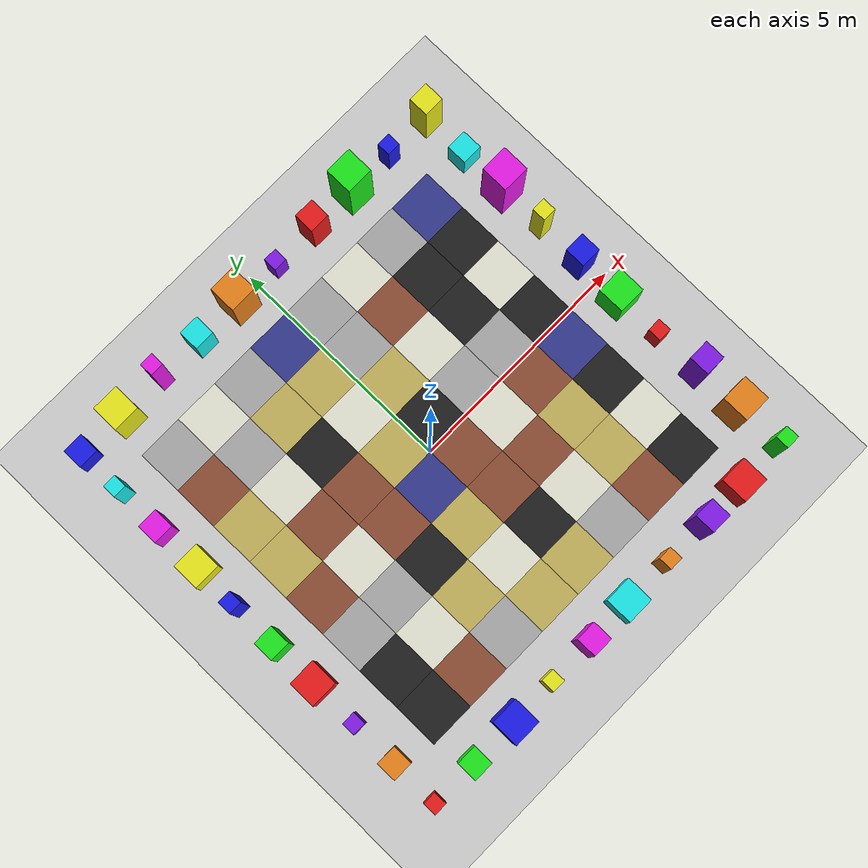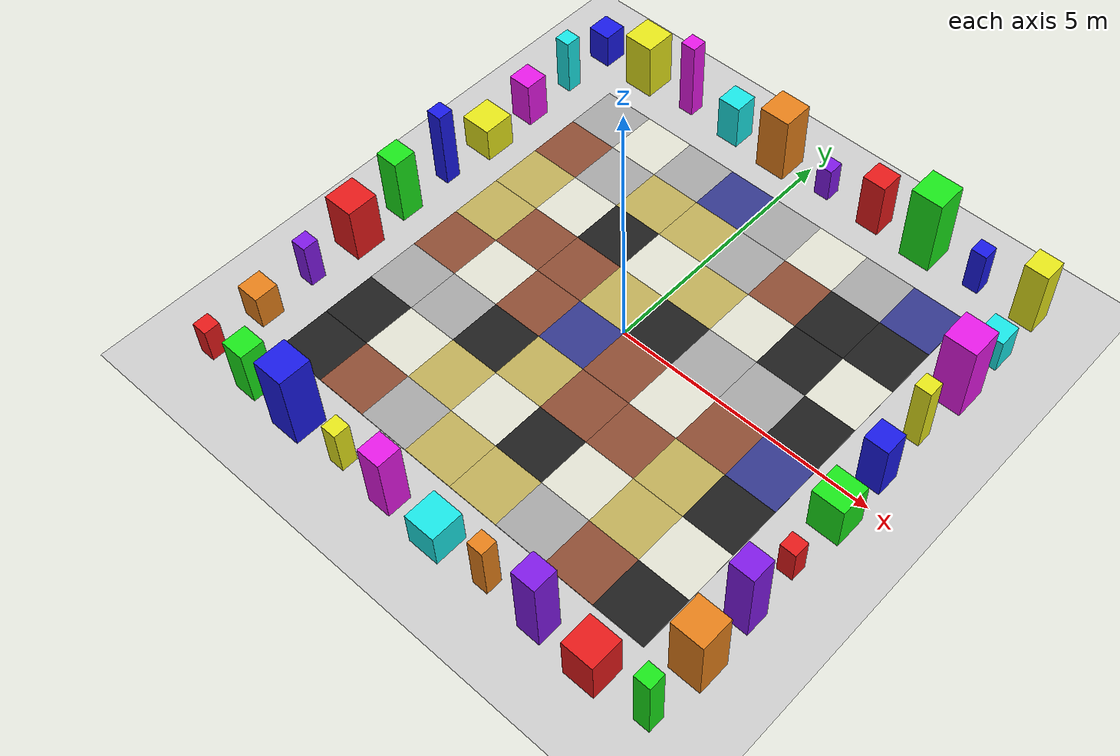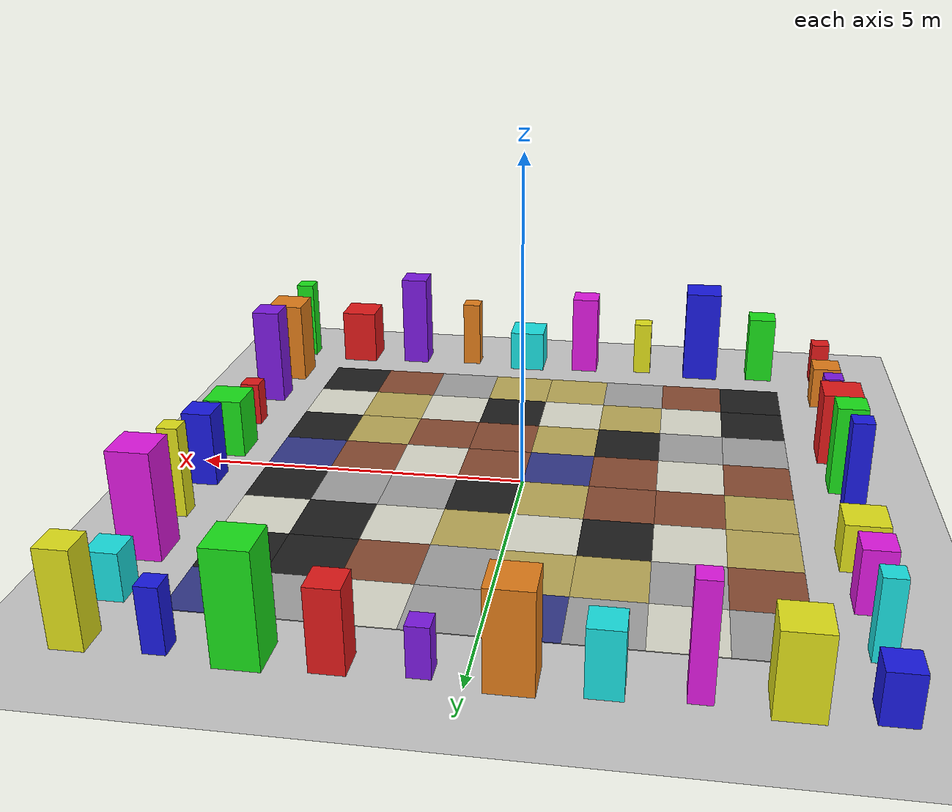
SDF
<?xml version="1.0" encoding="UTF-8"?>
<sdf version="1.9">
  <world name="vio_test">
    <physics type="ode">
      <max_step_size>0.004</max_step_size>
      <real_time_factor>1.0</real_time_factor>
      <real_time_update_rate>250</real_time_update_rate>
    </physics>
    <gravity>0 0 -9.8</gravity>
    <magnetic_field>6e-06 2.3e-05 -4.2e-05</magnetic_field>
    <atmosphere type="adiabatic"/>
    <scene>
      <grid>true</grid>
      <ambient>0.4 0.4 0.4 1</ambient>
      <background>0.7 0.7 0.7 1</background>
      <shadows>true</shadows>
    </scene>
    <model name="ground_plane">
      <static>true</static>
      <link name="link">
        <collision name="collision">
          <geometry>
            <plane>
              <normal>0 0 1</normal>
              <size>1 1</size>
            </plane>
          </geometry>
          <surface>
            <friction>
              <ode/>
            </friction>
            <bounce/>
            <contact/>
          </surface>
        </collision>
        <visual name="visual">
          <geometry>
            <plane>
              <normal>0 0 1</normal>
              <size>500 500</size>
            </plane>
          </geometry>
          <material>
            <ambient>0.8 0.8 0.8 1</ambient>
            <diffuse>0.8 0.8 0.8 1</diffuse>
            <specular>0.8 0.8 0.8 1</specular>
          </material>
        </visual>
        <pose>0 0 0 0 -0 0</pose>
        <inertial>
          <pose>0 0 0 0 -0 0</pose>
          <mass>1</mass>
          <inertia>
            <ixx>1</ixx>
            <ixy>0</ixy>
            <ixz>0</ixz>
            <iyy>1</iyy>
            <iyz>0</iyz>
            <izz>1</izz>
          </inertia>
        </inertial>
        <enable_wind>false</enable_wind>
      </link>
      <pose>0 0 0 0 -0 0</pose>
      <self_collide>false</self_collide>
    </model>
    <light name="sunUTC" type="directional">
      <pose>0 0 500 0 -0 0</pose>
      <cast_shadows>true</cast_shadows>
      <intensity>1</intensity>
      <direction>0.001 0.625 -0.78</direction>
      <diffuse>0.904 0.904 0.904 1</diffuse>
      <specular>0.271 0.271 0.271 1</specular>
      <attenuation>
        <range>2000</range>
        <linear>0</linear>
        <constant>1</constant>
        <quadratic>0</quadratic>
      </attenuation>
      <spot>
        <inner_angle>0</inner_angle>
        <outer_angle>0</outer_angle>
        <falloff>0</falloff>
      </spot>
    </light>
    <spherical_coordinates>
      <surface_model>EARTH_WGS84</surface_model>
      <world_frame_orientation>ENU</world_frame_orientation>
      <latitude_deg>47.397971057728974</latitude_deg>
      <longitude_deg> 8.546163739800146</longitude_deg>
      <elevation>0</elevation>
    </spherical_coordinates>

    <model name="vio_fence_000">
      <static>true</static>
      <pose>-4.750 -4.750 0.350 0 0 0</pose>
      <link name="link">
        <visual name="visual">
          <geometry><box><size>0.3 0.3 0.7</size></box></geometry>
          <material><ambient>0.9 0.1 0.1 1</ambient><diffuse>0.9 0.1 0.1 1</diffuse></material>
        </visual>
        <collision name="collision">
          <geometry><box><size>0.3 0.3 0.7</size></box></geometry>
        </collision>
      </link>
    </model>
    <model name="vio_fence_001">
      <static>true</static>
      <pose>-3.694 -4.750 0.575 0 0 0</pose>
      <link name="link">
        <visual name="visual">
          <geometry><box><size>0.45 0.45 1.15</size></box></geometry>
          <material><ambient>0.1 0.9 0.1 1</ambient><diffuse>0.1 0.9 0.1 1</diffuse></material>
        </visual>
        <collision name="collision">
          <geometry><box><size>0.45 0.45 1.15</size></box></geometry>
        </collision>
      </link>
    </model>
    <model name="vio_fence_002">
      <static>true</static>
      <pose>-2.639 -4.750 0.800 0 0 0</pose>
      <link name="link">
        <visual name="visual">
          <geometry><box><size>0.6 0.6 1.6</size></box></geometry>
          <material><ambient>0.1 0.1 0.9 1</ambient><diffuse>0.1 0.1 0.9 1</diffuse></material>
        </visual>
        <collision name="collision">
          <geometry><box><size>0.6 0.6 1.6</size></box></geometry>
        </collision>
      </link>
    </model>
    <model name="vio_fence_003">
      <static>true</static>
      <pose>-1.583 -4.750 0.462 0 0 0</pose>
      <link name="link">
        <visual name="visual">
          <geometry><box><size>0.3 0.3 0.9249999999999999</size></box></geometry>
          <material><ambient>0.9 0.9 0.1 1</ambient><diffuse>0.9 0.9 0.1 1</diffuse></material>
        </visual>
        <collision name="collision">
          <geometry><box><size>0.3 0.3 0.9249999999999999</size></box></geometry>
        </collision>
      </link>
    </model>
    <model name="vio_fence_004">
      <static>true</static>
      <pose>-0.528 -4.750 0.688 0 0 0</pose>
      <link name="link">
        <visual name="visual">
          <geometry><box><size>0.45 0.45 1.375</size></box></geometry>
          <material><ambient>0.9 0.1 0.9 1</ambient><diffuse>0.9 0.1 0.9 1</diffuse></material>
        </visual>
        <collision name="collision">
          <geometry><box><size>0.45 0.45 1.375</size></box></geometry>
        </collision>
      </link>
    </model>
    <model name="vio_fence_005">
      <static>true</static>
      <pose>0.528 -4.750 0.350 0 0 0</pose>
      <link name="link">
        <visual name="visual">
          <geometry><box><size>0.6 0.6 0.7</size></box></geometry>
          <material><ambient>0.1 0.9 0.9 1</ambient><diffuse>0.1 0.9 0.9 1</diffuse></material>
        </visual>
        <collision name="collision">
          <geometry><box><size>0.6 0.6 0.7</size></box></geometry>
        </collision>
      </link>
    </model>
    <model name="vio_fence_006">
      <static>true</static>
      <pose>1.583 -4.750 0.575 0 0 0</pose>
      <link name="link">
        <visual name="visual">
          <geometry><box><size>0.3 0.3 1.15</size></box></geometry>
          <material><ambient>0.9 0.5 0.1 1</ambient><diffuse>0.9 0.5 0.1 1</diffuse></material>
        </visual>
        <collision name="collision">
          <geometry><box><size>0.3 0.3 1.15</size></box></geometry>
        </collision>
      </link>
    </model>
    <model name="vio_fence_007">
      <static>true</static>
      <pose>2.639 -4.750 0.800 0 0 0</pose>
      <link name="link">
        <visual name="visual">
          <geometry><box><size>0.45 0.45 1.6</size></box></geometry>
          <material><ambient>0.5 0.1 0.9 1</ambient><diffuse>0.5 0.1 0.9 1</diffuse></material>
        </visual>
        <collision name="collision">
          <geometry><box><size>0.45 0.45 1.6</size></box></geometry>
        </collision>
      </link>
    </model>
    <model name="vio_fence_008">
      <static>true</static>
      <pose>3.694 -4.750 0.462 0 0 0</pose>
      <link name="link">
        <visual name="visual">
          <geometry><box><size>0.6 0.6 0.9249999999999999</size></box></geometry>
          <material><ambient>0.9 0.1 0.1 1</ambient><diffuse>0.9 0.1 0.1 1</diffuse></material>
        </visual>
        <collision name="collision">
          <geometry><box><size>0.6 0.6 0.9249999999999999</size></box></geometry>
        </collision>
      </link>
    </model>
    <model name="vio_fence_009">
      <static>true</static>
      <pose>4.750 -4.750 0.688 0 0 0</pose>
      <link name="link">
        <visual name="visual">
          <geometry><box><size>0.3 0.3 1.375</size></box></geometry>
          <material><ambient>0.1 0.9 0.1 1</ambient><diffuse>0.1 0.9 0.1 1</diffuse></material>
        </visual>
        <collision name="collision">
          <geometry><box><size>0.3 0.3 1.375</size></box></geometry>
        </collision>
      </link>
    </model>
    <model name="vio_fence_010">
      <static>true</static>
      <pose>-4.750 4.750 0.350 0 0 0</pose>
      <link name="link">
        <visual name="visual">
          <geometry><box><size>0.45 0.45 0.7</size></box></geometry>
          <material><ambient>0.1 0.1 0.9 1</ambient><diffuse>0.1 0.1 0.9 1</diffuse></material>
        </visual>
        <collision name="collision">
          <geometry><box><size>0.45 0.45 0.7</size></box></geometry>
        </collision>
      </link>
    </model>
    <model name="vio_fence_011">
      <static>true</static>
      <pose>-3.694 4.750 0.575 0 0 0</pose>
      <link name="link">
        <visual name="visual">
          <geometry><box><size>0.6 0.6 1.15</size></box></geometry>
          <material><ambient>0.9 0.9 0.1 1</ambient><diffuse>0.9 0.9 0.1 1</diffuse></material>
        </visual>
        <collision name="collision">
          <geometry><box><size>0.6 0.6 1.15</size></box></geometry>
        </collision>
      </link>
    </model>
    <model name="vio_fence_012">
      <static>true</static>
      <pose>-2.639 4.750 0.800 0 0 0</pose>
      <link name="link">
        <visual name="visual">
          <geometry><box><size>0.3 0.3 1.6</size></box></geometry>
          <material><ambient>0.9 0.1 0.9 1</ambient><diffuse>0.9 0.1 0.9 1</diffuse></material>
        </visual>
        <collision name="collision">
          <geometry><box><size>0.3 0.3 1.6</size></box></geometry>
        </collision>
      </link>
    </model>
    <model name="vio_fence_013">
      <static>true</static>
      <pose>-1.583 4.750 0.462 0 0 0</pose>
      <link name="link">
        <visual name="visual">
          <geometry><box><size>0.45 0.45 0.9249999999999999</size></box></geometry>
          <material><ambient>0.1 0.9 0.9 1</ambient><diffuse>0.1 0.9 0.9 1</diffuse></material>
        </visual>
        <collision name="collision">
          <geometry><box><size>0.45 0.45 0.9249999999999999</size></box></geometry>
        </collision>
      </link>
    </model>
    <model name="vio_fence_014">
      <static>true</static>
      <pose>-0.528 4.750 0.688 0 0 0</pose>
      <link name="link">
        <visual name="visual">
          <geometry><box><size>0.6 0.6 1.375</size></box></geometry>
          <material><ambient>0.9 0.5 0.1 1</ambient><diffuse>0.9 0.5 0.1 1</diffuse></material>
        </visual>
        <collision name="collision">
          <geometry><box><size>0.6 0.6 1.375</size></box></geometry>
        </collision>
      </link>
    </model>
    <model name="vio_fence_015">
      <static>true</static>
      <pose>0.528 4.750 0.350 0 0 0</pose>
      <link name="link">
        <visual name="visual">
          <geometry><box><size>0.3 0.3 0.7</size></box></geometry>
          <material><ambient>0.5 0.1 0.9 1</ambient><diffuse>0.5 0.1 0.9 1</diffuse></material>
        </visual>
        <collision name="collision">
          <geometry><box><size>0.3 0.3 0.7</size></box></geometry>
        </collision>
      </link>
    </model>
    <model name="vio_fence_016">
      <static>true</static>
      <pose>1.583 4.750 0.575 0 0 0</pose>
      <link name="link">
        <visual name="visual">
          <geometry><box><size>0.45 0.45 1.15</size></box></geometry>
          <material><ambient>0.9 0.1 0.1 1</ambient><diffuse>0.9 0.1 0.1 1</diffuse></material>
        </visual>
        <collision name="collision">
          <geometry><box><size>0.45 0.45 1.15</size></box></geometry>
        </collision>
      </link>
    </model>
    <model name="vio_fence_017">
      <static>true</static>
      <pose>2.639 4.750 0.800 0 0 0</pose>
      <link name="link">
        <visual name="visual">
          <geometry><box><size>0.6 0.6 1.6</size></box></geometry>
          <material><ambient>0.1 0.9 0.1 1</ambient><diffuse>0.1 0.9 0.1 1</diffuse></material>
        </visual>
        <collision name="collision">
          <geometry><box><size>0.6 0.6 1.6</size></box></geometry>
        </collision>
      </link>
    </model>
    <model name="vio_fence_018">
      <static>true</static>
      <pose>3.694 4.750 0.462 0 0 0</pose>
      <link name="link">
        <visual name="visual">
          <geometry><box><size>0.3 0.3 0.9249999999999999</size></box></geometry>
          <material><ambient>0.1 0.1 0.9 1</ambient><diffuse>0.1 0.1 0.9 1</diffuse></material>
        </visual>
        <collision name="collision">
          <geometry><box><size>0.3 0.3 0.9249999999999999</size></box></geometry>
        </collision>
      </link>
    </model>
    <model name="vio_fence_019">
      <static>true</static>
      <pose>4.750 4.750 0.688 0 0 0</pose>
      <link name="link">
        <visual name="visual">
          <geometry><box><size>0.45 0.45 1.375</size></box></geometry>
          <material><ambient>0.9 0.9 0.1 1</ambient><diffuse>0.9 0.9 0.1 1</diffuse></material>
        </visual>
        <collision name="collision">
          <geometry><box><size>0.45 0.45 1.375</size></box></geometry>
        </collision>
      </link>
    </model>
    <model name="vio_fence_020">
      <static>true</static>
      <pose>-4.750 -3.694 0.350 0 0 0</pose>
      <link name="link">
        <visual name="visual">
          <geometry><box><size>0.45 0.45 0.7</size></box></geometry>
          <material><ambient>0.9 0.5 0.1 1</ambient><diffuse>0.9 0.5 0.1 1</diffuse></material>
        </visual>
        <collision name="collision">
          <geometry><box><size>0.45 0.45 0.7</size></box></geometry>
        </collision>
      </link>
    </model>
    <model name="vio_fence_021">
      <static>true</static>
      <pose>-4.750 -2.639 0.462 0 0 0</pose>
      <link name="link">
        <visual name="visual">
          <geometry><box><size>0.3 0.3 0.9249999999999999</size></box></geometry>
          <material><ambient>0.5 0.1 0.9 1</ambient><diffuse>0.5 0.1 0.9 1</diffuse></material>
        </visual>
        <collision name="collision">
          <geometry><box><size>0.3 0.3 0.9249999999999999</size></box></geometry>
        </collision>
      </link>
    </model>
    <model name="vio_fence_022">
      <static>true</static>
      <pose>-4.750 -1.583 0.575 0 0 0</pose>
      <link name="link">
        <visual name="visual">
          <geometry><box><size>0.6 0.6 1.15</size></box></geometry>
          <material><ambient>0.9 0.1 0.1 1</ambient><diffuse>0.9 0.1 0.1 1</diffuse></material>
        </visual>
        <collision name="collision">
          <geometry><box><size>0.6 0.6 1.15</size></box></geometry>
        </collision>
      </link>
    </model>
    <model name="vio_fence_023">
      <static>true</static>
      <pose>-4.750 -0.528 0.688 0 0 0</pose>
      <link name="link">
        <visual name="visual">
          <geometry><box><size>0.45 0.45 1.375</size></box></geometry>
          <material><ambient>0.1 0.9 0.1 1</ambient><diffuse>0.1 0.9 0.1 1</diffuse></material>
        </visual>
        <collision name="collision">
          <geometry><box><size>0.45 0.45 1.375</size></box></geometry>
        </collision>
      </link>
    </model>
    <model name="vio_fence_024">
      <static>true</static>
      <pose>-4.750 0.528 0.800 0 0 0</pose>
      <link name="link">
        <visual name="visual">
          <geometry><box><size>0.3 0.3 1.6</size></box></geometry>
          <material><ambient>0.1 0.1 0.9 1</ambient><diffuse>0.1 0.1 0.9 1</diffuse></material>
        </visual>
        <collision name="collision">
          <geometry><box><size>0.3 0.3 1.6</size></box></geometry>
        </collision>
      </link>
    </model>
    <model name="vio_fence_025">
      <static>true</static>
      <pose>-4.750 1.583 0.350 0 0 0</pose>
      <link name="link">
        <visual name="visual">
          <geometry><box><size>0.6 0.6 0.7</size></box></geometry>
          <material><ambient>0.9 0.9 0.1 1</ambient><diffuse>0.9 0.9 0.1 1</diffuse></material>
        </visual>
        <collision name="collision">
          <geometry><box><size>0.6 0.6 0.7</size></box></geometry>
        </collision>
      </link>
    </model>
    <model name="vio_fence_026">
      <static>true</static>
      <pose>-4.750 2.639 0.462 0 0 0</pose>
      <link name="link">
        <visual name="visual">
          <geometry><box><size>0.45 0.45 0.9249999999999999</size></box></geometry>
          <material><ambient>0.9 0.1 0.9 1</ambient><diffuse>0.9 0.1 0.9 1</diffuse></material>
        </visual>
        <collision name="collision">
          <geometry><box><size>0.45 0.45 0.9249999999999999</size></box></geometry>
        </collision>
      </link>
    </model>
    <model name="vio_fence_027">
      <static>true</static>
      <pose>-4.750 3.694 0.575 0 0 0</pose>
      <link name="link">
        <visual name="visual">
          <geometry><box><size>0.3 0.3 1.15</size></box></geometry>
          <material><ambient>0.1 0.9 0.9 1</ambient><diffuse>0.1 0.9 0.9 1</diffuse></material>
        </visual>
        <collision name="collision">
          <geometry><box><size>0.3 0.3 1.15</size></box></geometry>
        </collision>
      </link>
    </model>
    <model name="vio_fence_028">
      <static>true</static>
      <pose>4.750 -3.694 0.688 0 0 0</pose>
      <link name="link">
        <visual name="visual">
          <geometry><box><size>0.6 0.6 1.375</size></box></geometry>
          <material><ambient>0.9 0.5 0.1 1</ambient><diffuse>0.9 0.5 0.1 1</diffuse></material>
        </visual>
        <collision name="collision">
          <geometry><box><size>0.6 0.6 1.375</size></box></geometry>
        </collision>
      </link>
    </model>
    <model name="vio_fence_029">
      <static>true</static>
      <pose>4.750 -2.639 0.800 0 0 0</pose>
      <link name="link">
        <visual name="visual">
          <geometry><box><size>0.45 0.45 1.6</size></box></geometry>
          <material><ambient>0.5 0.1 0.9 1</ambient><diffuse>0.5 0.1 0.9 1</diffuse></material>
        </visual>
        <collision name="collision">
          <geometry><box><size>0.45 0.45 1.6</size></box></geometry>
        </collision>
      </link>
    </model>
    <model name="vio_fence_030">
      <static>true</static>
      <pose>4.750 -1.583 0.350 0 0 0</pose>
      <link name="link">
        <visual name="visual">
          <geometry><box><size>0.3 0.3 0.7</size></box></geometry>
          <material><ambient>0.9 0.1 0.1 1</ambient><diffuse>0.9 0.1 0.1 1</diffuse></material>
        </visual>
        <collision name="collision">
          <geometry><box><size>0.3 0.3 0.7</size></box></geometry>
        </collision>
      </link>
    </model>
    <model name="vio_fence_031">
      <static>true</static>
      <pose>4.750 -0.528 0.462 0 0 0</pose>
      <link name="link">
        <visual name="visual">
          <geometry><box><size>0.6 0.6 0.9249999999999999</size></box></geometry>
          <material><ambient>0.1 0.9 0.1 1</ambient><diffuse>0.1 0.9 0.1 1</diffuse></material>
        </visual>
        <collision name="collision">
          <geometry><box><size>0.6 0.6 0.9249999999999999</size></box></geometry>
        </collision>
      </link>
    </model>
    <model name="vio_fence_032">
      <static>true</static>
      <pose>4.750 0.528 0.575 0 0 0</pose>
      <link name="link">
        <visual name="visual">
          <geometry><box><size>0.45 0.45 1.15</size></box></geometry>
          <material><ambient>0.1 0.1 0.9 1</ambient><diffuse>0.1 0.1 0.9 1</diffuse></material>
        </visual>
        <collision name="collision">
          <geometry><box><size>0.45 0.45 1.15</size></box></geometry>
        </collision>
      </link>
    </model>
    <model name="vio_fence_033">
      <static>true</static>
      <pose>4.750 1.583 0.688 0 0 0</pose>
      <link name="link">
        <visual name="visual">
          <geometry><box><size>0.3 0.3 1.375</size></box></geometry>
          <material><ambient>0.9 0.9 0.1 1</ambient><diffuse>0.9 0.9 0.1 1</diffuse></material>
        </visual>
        <collision name="collision">
          <geometry><box><size>0.3 0.3 1.375</size></box></geometry>
        </collision>
      </link>
    </model>
    <model name="vio_fence_034">
      <static>true</static>
      <pose>4.750 2.639 0.800 0 0 0</pose>
      <link name="link">
        <visual name="visual">
          <geometry><box><size>0.6 0.6 1.6</size></box></geometry>
          <material><ambient>0.9 0.1 0.9 1</ambient><diffuse>0.9 0.1 0.9 1</diffuse></material>
        </visual>
        <collision name="collision">
          <geometry><box><size>0.6 0.6 1.6</size></box></geometry>
        </collision>
      </link>
    </model>
    <model name="vio_fence_035">
      <static>true</static>
      <pose>4.750 3.694 0.350 0 0 0</pose>
      <link name="link">
        <visual name="visual">
          <geometry><box><size>0.45 0.45 0.7</size></box></geometry>
          <material><ambient>0.1 0.9 0.9 1</ambient><diffuse>0.1 0.9 0.9 1</diffuse></material>
        </visual>
        <collision name="collision">
          <geometry><box><size>0.45 0.45 0.7</size></box></geometry>
        </collision>
      </link>
    </model>

    <model name="vio_floor_tile_000">
      <static>true</static>
      <pose>-3.500 -3.500 0.005 0 0 0</pose>
      <link name="link">
        <visual name="visual">
          <geometry><box><size>1.0 1.0 0.01</size></box></geometry>
          <material><ambient>0.12 0.12 0.12 1</ambient><diffuse>0.12 0.12 0.12 1</diffuse></material>
        </visual>
      </link>
    </model>
    <model name="vio_floor_tile_001">
      <static>true</static>
      <pose>-3.500 -2.500 0.005 0 0 0</pose>
      <link name="link">
        <visual name="visual">
          <geometry><box><size>1.0 1.0 0.01</size></box></geometry>
          <material><ambient>0.12 0.12 0.12 1</ambient><diffuse>0.12 0.12 0.12 1</diffuse></material>
        </visual>
      </link>
    </model>
    <model name="vio_floor_tile_002">
      <static>true</static>
      <pose>-3.500 -1.500 0.005 0 0 0</pose>
      <link name="link">
        <visual name="visual">
          <geometry><box><size>1.0 1.0 0.01</size></box></geometry>
          <material><ambient>0.65 0.65 0.65 1</ambient><diffuse>0.65 0.65 0.65 1</diffuse></material>
        </visual>
      </link>
    </model>
    <model name="vio_floor_tile_003">
      <static>true</static>
      <pose>-3.500 -0.500 0.005 0 0 0</pose>
      <link name="link">
        <visual name="visual">
          <geometry><box><size>1.0 1.0 0.01</size></box></geometry>
          <material><ambient>0.55 0.3 0.2 1</ambient><diffuse>0.55 0.3 0.2 1</diffuse></material>
        </visual>
      </link>
    </model>
    <model name="vio_floor_tile_004">
      <static>true</static>
      <pose>-3.500 0.500 0.005 0 0 0</pose>
      <link name="link">
        <visual name="visual">
          <geometry><box><size>1.0 1.0 0.01</size></box></geometry>
          <material><ambient>0.75 0.68 0.35 1</ambient><diffuse>0.75 0.68 0.35 1</diffuse></material>
        </visual>
      </link>
    </model>
    <model name="vio_floor_tile_005">
      <static>true</static>
      <pose>-3.500 1.500 0.005 0 0 0</pose>
      <link name="link">
        <visual name="visual">
          <geometry><box><size>1.0 1.0 0.01</size></box></geometry>
          <material><ambient>0.75 0.68 0.35 1</ambient><diffuse>0.75 0.68 0.35 1</diffuse></material>
        </visual>
      </link>
    </model>
    <model name="vio_floor_tile_006">
      <static>true</static>
      <pose>-3.500 2.500 0.005 0 0 0</pose>
      <link name="link">
        <visual name="visual">
          <geometry><box><size>1.0 1.0 0.01</size></box></geometry>
          <material><ambient>0.55 0.3 0.2 1</ambient><diffuse>0.55 0.3 0.2 1</diffuse></material>
        </visual>
      </link>
    </model>
    <model name="vio_floor_tile_007">
      <static>true</static>
      <pose>-3.500 3.500 0.005 0 0 0</pose>
      <link name="link">
        <visual name="visual">
          <geometry><box><size>1.0 1.0 0.01</size></box></geometry>
          <material><ambient>0.65 0.65 0.65 1</ambient><diffuse>0.65 0.65 0.65 1</diffuse></material>
        </visual>
      </link>
    </model>
    <model name="vio_floor_tile_008">
      <static>true</static>
      <pose>-2.500 -3.500 0.005 0 0 0</pose>
      <link name="link">
        <visual name="visual">
          <geometry><box><size>1.0 1.0 0.01</size></box></geometry>
          <material><ambient>0.55 0.3 0.2 1</ambient><diffuse>0.55 0.3 0.2 1</diffuse></material>
        </visual>
      </link>
    </model>
    <model name="vio_floor_tile_009">
      <static>true</static>
      <pose>-2.500 -2.500 0.005 0 0 0</pose>
      <link name="link">
        <visual name="visual">
          <geometry><box><size>1.0 1.0 0.01</size></box></geometry>
          <material><ambient>0.88 0.88 0.82 1</ambient><diffuse>0.88 0.88 0.82 1</diffuse></material>
        </visual>
      </link>
    </model>
    <model name="vio_floor_tile_010">
      <static>true</static>
      <pose>-2.500 -1.500 0.005 0 0 0</pose>
      <link name="link">
        <visual name="visual">
          <geometry><box><size>1.0 1.0 0.01</size></box></geometry>
          <material><ambient>0.65 0.65 0.65 1</ambient><diffuse>0.65 0.65 0.65 1</diffuse></material>
        </visual>
      </link>
    </model>
    <model name="vio_floor_tile_011">
      <static>true</static>
      <pose>-2.500 -0.500 0.005 0 0 0</pose>
      <link name="link">
        <visual name="visual">
          <geometry><box><size>1.0 1.0 0.01</size></box></geometry>
          <material><ambient>0.88 0.88 0.82 1</ambient><diffuse>0.88 0.88 0.82 1</diffuse></material>
        </visual>
      </link>
    </model>
    <model name="vio_floor_tile_012">
      <static>true</static>
      <pose>-2.500 0.500 0.005 0 0 0</pose>
      <link name="link">
        <visual name="visual">
          <geometry><box><size>1.0 1.0 0.01</size></box></geometry>
          <material><ambient>0.55 0.3 0.2 1</ambient><diffuse>0.55 0.3 0.2 1</diffuse></material>
        </visual>
      </link>
    </model>
    <model name="vio_floor_tile_013">
      <static>true</static>
      <pose>-2.500 1.500 0.005 0 0 0</pose>
      <link name="link">
        <visual name="visual">
          <geometry><box><size>1.0 1.0 0.01</size></box></geometry>
          <material><ambient>0.88 0.88 0.82 1</ambient><diffuse>0.88 0.88 0.82 1</diffuse></material>
        </visual>
      </link>
    </model>
    <model name="vio_floor_tile_014">
      <static>true</static>
      <pose>-2.500 2.500 0.005 0 0 0</pose>
      <link name="link">
        <visual name="visual">
          <geometry><box><size>1.0 1.0 0.01</size></box></geometry>
          <material><ambient>0.65 0.65 0.65 1</ambient><diffuse>0.65 0.65 0.65 1</diffuse></material>
        </visual>
      </link>
    </model>
    <model name="vio_floor_tile_015">
      <static>true</static>
      <pose>-2.500 3.500 0.005 0 0 0</pose>
      <link name="link">
        <visual name="visual">
          <geometry><box><size>1.0 1.0 0.01</size></box></geometry>
          <material><ambient>0.88 0.88 0.82 1</ambient><diffuse>0.88 0.88 0.82 1</diffuse></material>
        </visual>
      </link>
    </model>
    <model name="vio_floor_tile_016">
      <static>true</static>
      <pose>-1.500 -3.500 0.005 0 0 0</pose>
      <link name="link">
        <visual name="visual">
          <geometry><box><size>1.0 1.0 0.01</size></box></geometry>
          <material><ambient>0.65 0.65 0.65 1</ambient><diffuse>0.65 0.65 0.65 1</diffuse></material>
        </visual>
      </link>
    </model>
    <model name="vio_floor_tile_017">
      <static>true</static>
      <pose>-1.500 -2.500 0.005 0 0 0</pose>
      <link name="link">
        <visual name="visual">
          <geometry><box><size>1.0 1.0 0.01</size></box></geometry>
          <material><ambient>0.75 0.68 0.35 1</ambient><diffuse>0.75 0.68 0.35 1</diffuse></material>
        </visual>
      </link>
    </model>
    <model name="vio_floor_tile_018">
      <static>true</static>
      <pose>-1.500 -1.500 0.005 0 0 0</pose>
      <link name="link">
        <visual name="visual">
          <geometry><box><size>1.0 1.0 0.01</size></box></geometry>
          <material><ambient>0.12 0.12 0.12 1</ambient><diffuse>0.12 0.12 0.12 1</diffuse></material>
        </visual>
      </link>
    </model>
    <model name="vio_floor_tile_019">
      <static>true</static>
      <pose>-1.500 -0.500 0.005 0 0 0</pose>
      <link name="link">
        <visual name="visual">
          <geometry><box><size>1.0 1.0 0.01</size></box></geometry>
          <material><ambient>0.55 0.3 0.2 1</ambient><diffuse>0.55 0.3 0.2 1</diffuse></material>
        </visual>
      </link>
    </model>
    <model name="vio_floor_tile_020">
      <static>true</static>
      <pose>-1.500 0.500 0.005 0 0 0</pose>
      <link name="link">
        <visual name="visual">
          <geometry><box><size>1.0 1.0 0.01</size></box></geometry>
          <material><ambient>0.55 0.3 0.2 1</ambient><diffuse>0.55 0.3 0.2 1</diffuse></material>
        </visual>
      </link>
    </model>
    <model name="vio_floor_tile_021">
      <static>true</static>
      <pose>-1.500 1.500 0.005 0 0 0</pose>
      <link name="link">
        <visual name="visual">
          <geometry><box><size>1.0 1.0 0.01</size></box></geometry>
          <material><ambient>0.12 0.12 0.12 1</ambient><diffuse>0.12 0.12 0.12 1</diffuse></material>
        </visual>
      </link>
    </model>
    <model name="vio_floor_tile_022">
      <static>true</static>
      <pose>-1.500 2.500 0.005 0 0 0</pose>
      <link name="link">
        <visual name="visual">
          <geometry><box><size>1.0 1.0 0.01</size></box></geometry>
          <material><ambient>0.75 0.68 0.35 1</ambient><diffuse>0.75 0.68 0.35 1</diffuse></material>
        </visual>
      </link>
    </model>
    <model name="vio_floor_tile_023">
      <static>true</static>
      <pose>-1.500 3.500 0.005 0 0 0</pose>
      <link name="link">
        <visual name="visual">
          <geometry><box><size>1.0 1.0 0.01</size></box></geometry>
          <material><ambient>0.65 0.65 0.65 1</ambient><diffuse>0.65 0.65 0.65 1</diffuse></material>
        </visual>
      </link>
    </model>
    <model name="vio_floor_tile_024">
      <static>true</static>
      <pose>-0.500 -3.500 0.005 0 0 0</pose>
      <link name="link">
        <visual name="visual">
          <geometry><box><size>1.0 1.0 0.01</size></box></geometry>
          <material><ambient>0.75 0.68 0.35 1</ambient><diffuse>0.75 0.68 0.35 1</diffuse></material>
        </visual>
      </link>
    </model>
    <model name="vio_floor_tile_025">
      <static>true</static>
      <pose>-0.500 -2.500 0.005 0 0 0</pose>
      <link name="link">
        <visual name="visual">
          <geometry><box><size>1.0 1.0 0.01</size></box></geometry>
          <material><ambient>0.88 0.88 0.82 1</ambient><diffuse>0.88 0.88 0.82 1</diffuse></material>
        </visual>
      </link>
    </model>
    <model name="vio_floor_tile_026">
      <static>true</static>
      <pose>-0.500 -1.500 0.005 0 0 0</pose>
      <link name="link">
        <visual name="visual">
          <geometry><box><size>1.0 1.0 0.01</size></box></geometry>
          <material><ambient>0.75 0.68 0.35 1</ambient><diffuse>0.75 0.68 0.35 1</diffuse></material>
        </visual>
      </link>
    </model>
    <model name="vio_floor_tile_027">
      <static>true</static>
      <pose>-0.500 -0.500 0.005 0 0 0</pose>
      <link name="link">
        <visual name="visual">
          <geometry><box><size>1.0 1.0 0.01</size></box></geometry>
          <material><ambient>0.2 0.22 0.55 1</ambient><diffuse>0.2 0.22 0.55 1</diffuse></material>
        </visual>
      </link>
    </model>
    <model name="vio_floor_tile_028">
      <static>true</static>
      <pose>-0.500 0.500 0.005 0 0 0</pose>
      <link name="link">
        <visual name="visual">
          <geometry><box><size>1.0 1.0 0.01</size></box></geometry>
          <material><ambient>0.75 0.68 0.35 1</ambient><diffuse>0.75 0.68 0.35 1</diffuse></material>
        </visual>
      </link>
    </model>
    <model name="vio_floor_tile_029">
      <static>true</static>
      <pose>-0.500 1.500 0.005 0 0 0</pose>
      <link name="link">
        <visual name="visual">
          <geometry><box><size>1.0 1.0 0.01</size></box></geometry>
          <material><ambient>0.88 0.88 0.82 1</ambient><diffuse>0.88 0.88 0.82 1</diffuse></material>
        </visual>
      </link>
    </model>
    <model name="vio_floor_tile_030">
      <static>true</static>
      <pose>-0.500 2.500 0.005 0 0 0</pose>
      <link name="link">
        <visual name="visual">
          <geometry><box><size>1.0 1.0 0.01</size></box></geometry>
          <material><ambient>0.75 0.68 0.35 1</ambient><diffuse>0.75 0.68 0.35 1</diffuse></material>
        </visual>
      </link>
    </model>
    <model name="vio_floor_tile_031">
      <static>true</static>
      <pose>-0.500 3.500 0.005 0 0 0</pose>
      <link name="link">
        <visual name="visual">
          <geometry><box><size>1.0 1.0 0.01</size></box></geometry>
          <material><ambient>0.2 0.22 0.55 1</ambient><diffuse>0.2 0.22 0.55 1</diffuse></material>
        </visual>
      </link>
    </model>
    <model name="vio_floor_tile_032">
      <static>true</static>
      <pose>0.500 -3.500 0.005 0 0 0</pose>
      <link name="link">
        <visual name="visual">
          <geometry><box><size>1.0 1.0 0.01</size></box></geometry>
          <material><ambient>0.75 0.68 0.35 1</ambient><diffuse>0.75 0.68 0.35 1</diffuse></material>
        </visual>
      </link>
    </model>
    <model name="vio_floor_tile_033">
      <static>true</static>
      <pose>0.500 -2.500 0.005 0 0 0</pose>
      <link name="link">
        <visual name="visual">
          <geometry><box><size>1.0 1.0 0.01</size></box></geometry>
          <material><ambient>0.12 0.12 0.12 1</ambient><diffuse>0.12 0.12 0.12 1</diffuse></material>
        </visual>
      </link>
    </model>
    <model name="vio_floor_tile_034">
      <static>true</static>
      <pose>0.500 -1.500 0.005 0 0 0</pose>
      <link name="link">
        <visual name="visual">
          <geometry><box><size>1.0 1.0 0.01</size></box></geometry>
          <material><ambient>0.55 0.3 0.2 1</ambient><diffuse>0.55 0.3 0.2 1</diffuse></material>
        </visual>
      </link>
    </model>
    <model name="vio_floor_tile_035">
      <static>true</static>
      <pose>0.500 -0.500 0.005 0 0 0</pose>
      <link name="link">
        <visual name="visual">
          <geometry><box><size>1.0 1.0 0.01</size></box></geometry>
          <material><ambient>0.55 0.3 0.2 1</ambient><diffuse>0.55 0.3 0.2 1</diffuse></material>
        </visual>
      </link>
    </model>
    <model name="vio_floor_tile_036">
      <static>true</static>
      <pose>0.500 0.500 0.005 0 0 0</pose>
      <link name="link">
        <visual name="visual">
          <geometry><box><size>1.0 1.0 0.01</size></box></geometry>
          <material><ambient>0.12 0.12 0.12 1</ambient><diffuse>0.12 0.12 0.12 1</diffuse></material>
        </visual>
      </link>
    </model>
    <model name="vio_floor_tile_037">
      <static>true</static>
      <pose>0.500 1.500 0.005 0 0 0</pose>
      <link name="link">
        <visual name="visual">
          <geometry><box><size>1.0 1.0 0.01</size></box></geometry>
          <material><ambient>0.75 0.68 0.35 1</ambient><diffuse>0.75 0.68 0.35 1</diffuse></material>
        </visual>
      </link>
    </model>
    <model name="vio_floor_tile_038">
      <static>true</static>
      <pose>0.500 2.500 0.005 0 0 0</pose>
      <link name="link">
        <visual name="visual">
          <geometry><box><size>1.0 1.0 0.01</size></box></geometry>
          <material><ambient>0.65 0.65 0.65 1</ambient><diffuse>0.65 0.65 0.65 1</diffuse></material>
        </visual>
      </link>
    </model>
    <model name="vio_floor_tile_039">
      <static>true</static>
      <pose>0.500 3.500 0.005 0 0 0</pose>
      <link name="link">
        <visual name="visual">
          <geometry><box><size>1.0 1.0 0.01</size></box></geometry>
          <material><ambient>0.65 0.65 0.65 1</ambient><diffuse>0.65 0.65 0.65 1</diffuse></material>
        </visual>
      </link>
    </model>
    <model name="vio_floor_tile_040">
      <static>true</static>
      <pose>1.500 -3.500 0.005 0 0 0</pose>
      <link name="link">
        <visual name="visual">
          <geometry><box><size>1.0 1.0 0.01</size></box></geometry>
          <material><ambient>0.65 0.65 0.65 1</ambient><diffuse>0.65 0.65 0.65 1</diffuse></material>
        </visual>
      </link>
    </model>
    <model name="vio_floor_tile_041">
      <static>true</static>
      <pose>1.500 -2.500 0.005 0 0 0</pose>
      <link name="link">
        <visual name="visual">
          <geometry><box><size>1.0 1.0 0.01</size></box></geometry>
          <material><ambient>0.88 0.88 0.82 1</ambient><diffuse>0.88 0.88 0.82 1</diffuse></material>
        </visual>
      </link>
    </model>
    <model name="vio_floor_tile_042">
      <static>true</static>
      <pose>1.500 -1.500 0.005 0 0 0</pose>
      <link name="link">
        <visual name="visual">
          <geometry><box><size>1.0 1.0 0.01</size></box></geometry>
          <material><ambient>0.55 0.3 0.2 1</ambient><diffuse>0.55 0.3 0.2 1</diffuse></material>
        </visual>
      </link>
    </model>
    <model name="vio_floor_tile_043">
      <static>true</static>
      <pose>1.500 -0.500 0.005 0 0 0</pose>
      <link name="link">
        <visual name="visual">
          <geometry><box><size>1.0 1.0 0.01</size></box></geometry>
          <material><ambient>0.88 0.88 0.82 1</ambient><diffuse>0.88 0.88 0.82 1</diffuse></material>
        </visual>
      </link>
    </model>
    <model name="vio_floor_tile_044">
      <static>true</static>
      <pose>1.500 0.500 0.005 0 0 0</pose>
      <link name="link">
        <visual name="visual">
          <geometry><box><size>1.0 1.0 0.01</size></box></geometry>
          <material><ambient>0.65 0.65 0.65 1</ambient><diffuse>0.65 0.65 0.65 1</diffuse></material>
        </visual>
      </link>
    </model>
    <model name="vio_floor_tile_045">
      <static>true</static>
      <pose>1.500 1.500 0.005 0 0 0</pose>
      <link name="link">
        <visual name="visual">
          <geometry><box><size>1.0 1.0 0.01</size></box></geometry>
          <material><ambient>0.88 0.88 0.82 1</ambient><diffuse>0.88 0.88 0.82 1</diffuse></material>
        </visual>
      </link>
    </model>
    <model name="vio_floor_tile_046">
      <static>true</static>
      <pose>1.500 2.500 0.005 0 0 0</pose>
      <link name="link">
        <visual name="visual">
          <geometry><box><size>1.0 1.0 0.01</size></box></geometry>
          <material><ambient>0.55 0.3 0.2 1</ambient><diffuse>0.55 0.3 0.2 1</diffuse></material>
        </visual>
      </link>
    </model>
    <model name="vio_floor_tile_047">
      <static>true</static>
      <pose>1.500 3.500 0.005 0 0 0</pose>
      <link name="link">
        <visual name="visual">
          <geometry><box><size>1.0 1.0 0.01</size></box></geometry>
          <material><ambient>0.88 0.88 0.82 1</ambient><diffuse>0.88 0.88 0.82 1</diffuse></material>
        </visual>
      </link>
    </model>
    <model name="vio_floor_tile_048">
      <static>true</static>
      <pose>2.500 -3.500 0.005 0 0 0</pose>
      <link name="link">
        <visual name="visual">
          <geometry><box><size>1.0 1.0 0.01</size></box></geometry>
          <material><ambient>0.55 0.3 0.2 1</ambient><diffuse>0.55 0.3 0.2 1</diffuse></material>
        </visual>
      </link>
    </model>
    <model name="vio_floor_tile_049">
      <static>true</static>
      <pose>2.500 -2.500 0.005 0 0 0</pose>
      <link name="link">
        <visual name="visual">
          <geometry><box><size>1.0 1.0 0.01</size></box></geometry>
          <material><ambient>0.75 0.68 0.35 1</ambient><diffuse>0.75 0.68 0.35 1</diffuse></material>
        </visual>
      </link>
    </model>
    <model name="vio_floor_tile_050">
      <static>true</static>
      <pose>2.500 -1.500 0.005 0 0 0</pose>
      <link name="link">
        <visual name="visual">
          <geometry><box><size>1.0 1.0 0.01</size></box></geometry>
          <material><ambient>0.75 0.68 0.35 1</ambient><diffuse>0.75 0.68 0.35 1</diffuse></material>
        </visual>
      </link>
    </model>
    <model name="vio_floor_tile_051">
      <static>true</static>
      <pose>2.500 -0.500 0.005 0 0 0</pose>
      <link name="link">
        <visual name="visual">
          <geometry><box><size>1.0 1.0 0.01</size></box></geometry>
          <material><ambient>0.55 0.3 0.2 1</ambient><diffuse>0.55 0.3 0.2 1</diffuse></material>
        </visual>
      </link>
    </model>
    <model name="vio_floor_tile_052">
      <static>true</static>
      <pose>2.500 0.500 0.005 0 0 0</pose>
      <link name="link">
        <visual name="visual">
          <geometry><box><size>1.0 1.0 0.01</size></box></geometry>
          <material><ambient>0.65 0.65 0.65 1</ambient><diffuse>0.65 0.65 0.65 1</diffuse></material>
        </visual>
      </link>
    </model>
    <model name="vio_floor_tile_053">
      <static>true</static>
      <pose>2.500 1.500 0.005 0 0 0</pose>
      <link name="link">
        <visual name="visual">
          <geometry><box><size>1.0 1.0 0.01</size></box></geometry>
          <material><ambient>0.12 0.12 0.12 1</ambient><diffuse>0.12 0.12 0.12 1</diffuse></material>
        </visual>
      </link>
    </model>
    <model name="vio_floor_tile_054">
      <static>true</static>
      <pose>2.500 2.500 0.005 0 0 0</pose>
      <link name="link">
        <visual name="visual">
          <geometry><box><size>1.0 1.0 0.01</size></box></geometry>
          <material><ambient>0.12 0.12 0.12 1</ambient><diffuse>0.12 0.12 0.12 1</diffuse></material>
        </visual>
      </link>
    </model>
    <model name="vio_floor_tile_055">
      <static>true</static>
      <pose>2.500 3.500 0.005 0 0 0</pose>
      <link name="link">
        <visual name="visual">
          <geometry><box><size>1.0 1.0 0.01</size></box></geometry>
          <material><ambient>0.65 0.65 0.65 1</ambient><diffuse>0.65 0.65 0.65 1</diffuse></material>
        </visual>
      </link>
    </model>
    <model name="vio_floor_tile_056">
      <static>true</static>
      <pose>3.500 -3.500 0.005 0 0 0</pose>
      <link name="link">
        <visual name="visual">
          <geometry><box><size>1.0 1.0 0.01</size></box></geometry>
          <material><ambient>0.12 0.12 0.12 1</ambient><diffuse>0.12 0.12 0.12 1</diffuse></material>
        </visual>
      </link>
    </model>
    <model name="vio_floor_tile_057">
      <static>true</static>
      <pose>3.500 -2.500 0.005 0 0 0</pose>
      <link name="link">
        <visual name="visual">
          <geometry><box><size>1.0 1.0 0.01</size></box></geometry>
          <material><ambient>0.88 0.88 0.82 1</ambient><diffuse>0.88 0.88 0.82 1</diffuse></material>
        </visual>
      </link>
    </model>
    <model name="vio_floor_tile_058">
      <static>true</static>
      <pose>3.500 -1.500 0.005 0 0 0</pose>
      <link name="link">
        <visual name="visual">
          <geometry><box><size>1.0 1.0 0.01</size></box></geometry>
          <material><ambient>0.12 0.12 0.12 1</ambient><diffuse>0.12 0.12 0.12 1</diffuse></material>
        </visual>
      </link>
    </model>
    <model name="vio_floor_tile_059">
      <static>true</static>
      <pose>3.500 -0.500 0.005 0 0 0</pose>
      <link name="link">
        <visual name="visual">
          <geometry><box><size>1.0 1.0 0.01</size></box></geometry>
          <material><ambient>0.2 0.22 0.55 1</ambient><diffuse>0.2 0.22 0.55 1</diffuse></material>
        </visual>
      </link>
    </model>
    <model name="vio_floor_tile_060">
      <static>true</static>
      <pose>3.500 0.500 0.005 0 0 0</pose>
      <link name="link">
        <visual name="visual">
          <geometry><box><size>1.0 1.0 0.01</size></box></geometry>
          <material><ambient>0.12 0.12 0.12 1</ambient><diffuse>0.12 0.12 0.12 1</diffuse></material>
        </visual>
      </link>
    </model>
    <model name="vio_floor_tile_061">
      <static>true</static>
      <pose>3.500 1.500 0.005 0 0 0</pose>
      <link name="link">
        <visual name="visual">
          <geometry><box><size>1.0 1.0 0.01</size></box></geometry>
          <material><ambient>0.88 0.88 0.82 1</ambient><diffuse>0.88 0.88 0.82 1</diffuse></material>
        </visual>
      </link>
    </model>
    <model name="vio_floor_tile_062">
      <static>true</static>
      <pose>3.500 2.500 0.005 0 0 0</pose>
      <link name="link">
        <visual name="visual">
          <geometry><box><size>1.0 1.0 0.01</size></box></geometry>
          <material><ambient>0.12 0.12 0.12 1</ambient><diffuse>0.12 0.12 0.12 1</diffuse></material>
        </visual>
      </link>
    </model>
    <model name="vio_floor_tile_063">
      <static>true</static>
      <pose>3.500 3.500 0.005 0 0 0</pose>
      <link name="link">
        <visual name="visual">
          <geometry><box><size>1.0 1.0 0.01</size></box></geometry>
          <material><ambient>0.2 0.22 0.55 1</ambient><diffuse>0.2 0.22 0.55 1</diffuse></material>
        </visual>
      </link>
    </model>

  </world>
</sdf>
